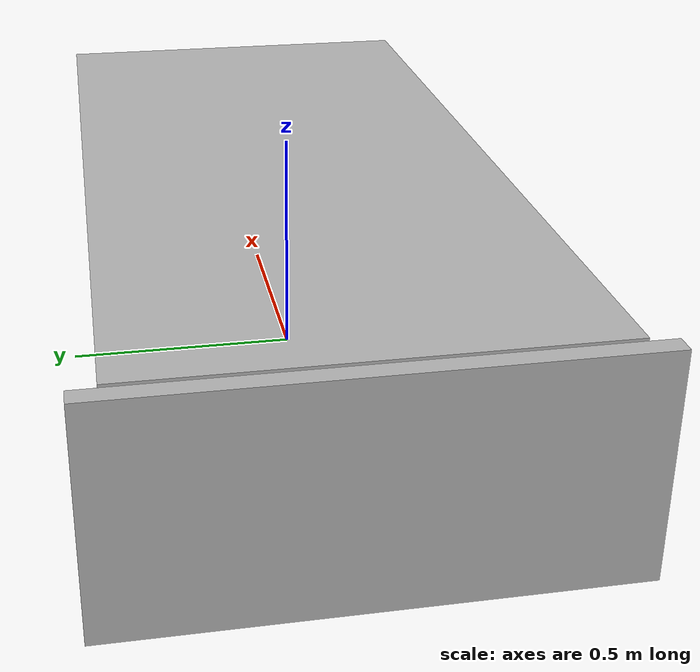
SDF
<?xml version="1.0" ?>
<sdf version="1.6">
  <model name="rpo2023/bed">
    <static>true</static>
    <link name="1_link">
      <collision name="1_col">
        <geometry>
          <box>
            <size>0.04 1.0 0.46</size>
          </box>
        </geometry>
      </collision>
      <visual name="1_vis">
        <geometry>
          <box>
            <size>0.04 1.0 0.46</size>
          </box>
        </geometry>
      </visual>
      <pose>-0.98 0.0 0.23 0 0 0</pose>
    </link>
    <link name="2_link">
      <collision name="2_col">
        <geometry>
          <box>
            <size>1.9 0.90 0.46</size>
          </box>
        </geometry>
      </collision>
      <visual name="2_vis">
        <geometry>
          <box>
            <size>1.9 0.90 0.46</size>
          </box>
        </geometry>
      </visual>
      <pose>0.0 0.0 0.23 0 0 0</pose>
    </link>
    <link name="on_top_of">
      <virtual_volume name="on_top_of_vv">
        <geometry>
          <box>
            <size>1.9 0.90 0.46</size>
          </box>
        </geometry>
        <pose>0.0 0.0 0.69 0 0 0</pose>
      </virtual_volume>
    </link>
    <link name="in_front_of">
      <virtual_volume name="in_front_of_vv">
        <geometry>
          <box>
            <size>0.2 1.26 0.01</size>
          </box>
        </geometry>
        <pose>-1.30 0.0 0.005 0 0 0</pose>
      </virtual_volume>
    </link>
  </model>
</sdf>
